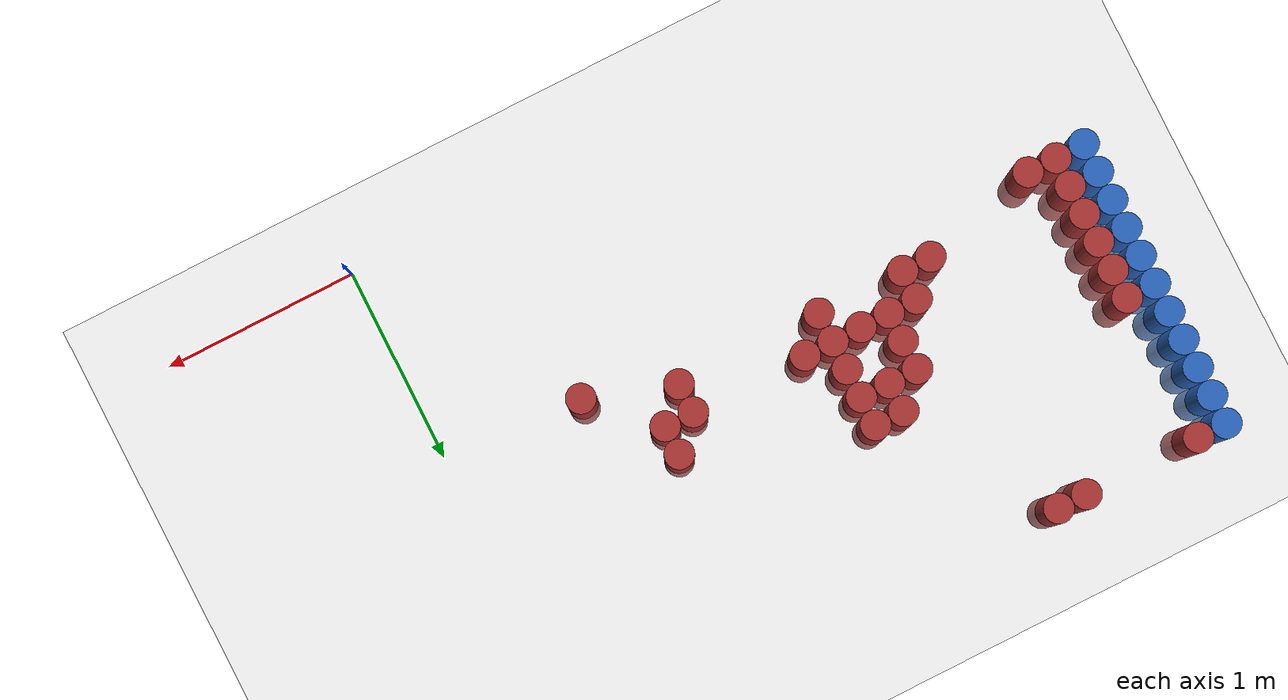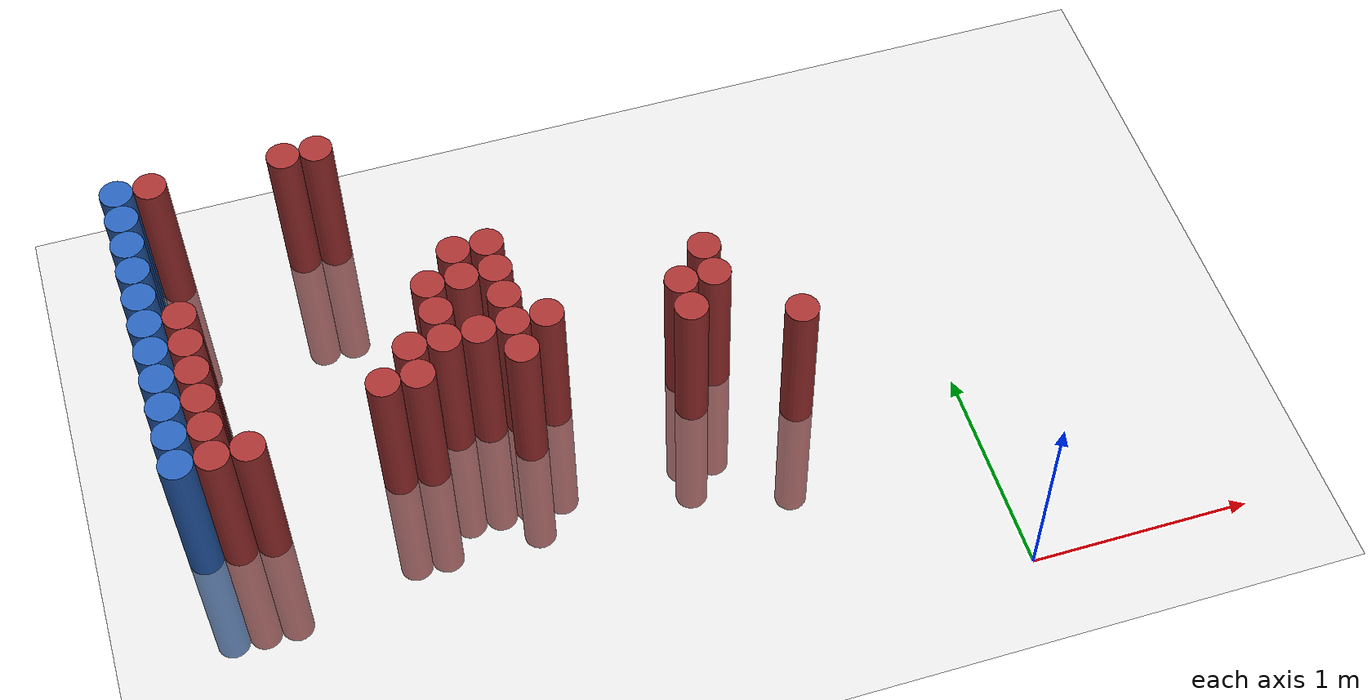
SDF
<sdf version="1.6">
 <world name="default">
  <model name="ground_plane">
   <static>1</static>
   <link name="link">
    <collision name="collision">
     <geometry><plane><normal>0 0 1</normal><size>100 100</size></plane></geometry>
     <surface><friction><ode><mu>100</mu><mu2>50</mu2></ode></friction></surface>
    </collision>
    <visual name="visual">
     <cast_shadows>0</cast_shadows>
     <geometry><plane><normal>0 0 1</normal><size>100 100</size></plane></geometry>
     <material>
      <script><uri>file://media/materials/scripts/gazebo.material</uri><name>Gazebo/Grey</name></script>
     </material>
    </visual>
   </link>
  </model>
  <model name="unit_cylinder_129">
   <static>1</static>
   <pose>-3.425000 1.075000 0.000000 0.000000 0.000000 0.000000</pose>
   <link name="link">
    <inertial>
     <mass>1</mass>
     <inertia><ixx>0.145833</ixx><ixy>0</ixy><ixz>0</ixz><iyy>0.145833</iyy><iyz>0</iyz><izz>0.125</izz></inertia>
    </inertial>
    <collision name="collision">
     <geometry><cylinder><radius>0.075000</radius><length>1.5</length></cylinder></geometry>
    </collision>
    <visual name="visual">
     <geometry><cylinder><radius>0.075000</radius><length>1.5</length></cylinder></geometry>
     <material>
      <ambient>0.152000 0.379000 0.720000 1</ambient>
      <diffuse>0.152000 0.379000 0.720000 1</diffuse>
     </material>
     <material>
      <script><name>Gazebo/Grey</name><uri>file://media/materials/scripts/gazebo.material</uri></script>
     </material>
    </visual>
   </link>
  </model>
  <model name="unit_cylinder_131">
   <static>1</static>
   <pose>-3.425000 1.225000 0.000000 0.000000 0.000000 0.000000</pose>
   <link name="link">
    <inertial>
     <mass>1</mass>
     <inertia><ixx>0.145833</ixx><ixy>0</ixy><ixz>0</ixz><iyy>0.145833</iyy><iyz>0</iyz><izz>0.125</izz></inertia>
    </inertial>
    <collision name="collision">
     <geometry><cylinder><radius>0.075000</radius><length>1.5</length></cylinder></geometry>
    </collision>
    <visual name="visual">
     <geometry><cylinder><radius>0.075000</radius><length>1.5</length></cylinder></geometry>
     <material>
      <ambient>0.152000 0.379000 0.720000 1</ambient>
      <diffuse>0.152000 0.379000 0.720000 1</diffuse>
     </material>
     <material>
      <script><name>Gazebo/Grey</name><uri>file://media/materials/scripts/gazebo.material</uri></script>
     </material>
    </visual>
   </link>
  </model>
  <model name="unit_cylinder_133">
   <static>1</static>
   <pose>-3.425000 1.375000 0.000000 0.000000 0.000000 0.000000</pose>
   <link name="link">
    <inertial>
     <mass>1</mass>
     <inertia><ixx>0.145833</ixx><ixy>0</ixy><ixz>0</ixz><iyy>0.145833</iyy><iyz>0</iyz><izz>0.125</izz></inertia>
    </inertial>
    <collision name="collision">
     <geometry><cylinder><radius>0.075000</radius><length>1.5</length></cylinder></geometry>
    </collision>
    <visual name="visual">
     <geometry><cylinder><radius>0.075000</radius><length>1.5</length></cylinder></geometry>
     <material>
      <ambient>0.152000 0.379000 0.720000 1</ambient>
      <diffuse>0.152000 0.379000 0.720000 1</diffuse>
     </material>
     <material>
      <script><name>Gazebo/Grey</name><uri>file://media/materials/scripts/gazebo.material</uri></script>
     </material>
    </visual>
   </link>
  </model>
  <model name="unit_cylinder_135">
   <static>1</static>
   <pose>-3.425000 1.525000 0.000000 0.000000 0.000000 0.000000</pose>
   <link name="link">
    <inertial>
     <mass>1</mass>
     <inertia><ixx>0.145833</ixx><ixy>0</ixy><ixz>0</ixz><iyy>0.145833</iyy><iyz>0</iyz><izz>0.125</izz></inertia>
    </inertial>
    <collision name="collision">
     <geometry><cylinder><radius>0.075000</radius><length>1.5</length></cylinder></geometry>
    </collision>
    <visual name="visual">
     <geometry><cylinder><radius>0.075000</radius><length>1.5</length></cylinder></geometry>
     <material>
      <ambient>0.152000 0.379000 0.720000 1</ambient>
      <diffuse>0.152000 0.379000 0.720000 1</diffuse>
     </material>
     <material>
      <script><name>Gazebo/Grey</name><uri>file://media/materials/scripts/gazebo.material</uri></script>
     </material>
    </visual>
   </link>
  </model>
  <model name="unit_cylinder_137">
   <static>1</static>
   <pose>-3.425000 1.675000 0.000000 0.000000 0.000000 0.000000</pose>
   <link name="link">
    <inertial>
     <mass>1</mass>
     <inertia><ixx>0.145833</ixx><ixy>0</ixy><ixz>0</ixz><iyy>0.145833</iyy><iyz>0</iyz><izz>0.125</izz></inertia>
    </inertial>
    <collision name="collision">
     <geometry><cylinder><radius>0.075000</radius><length>1.5</length></cylinder></geometry>
    </collision>
    <visual name="visual">
     <geometry><cylinder><radius>0.075000</radius><length>1.5</length></cylinder></geometry>
     <material>
      <ambient>0.152000 0.379000 0.720000 1</ambient>
      <diffuse>0.152000 0.379000 0.720000 1</diffuse>
     </material>
     <material>
      <script><name>Gazebo/Grey</name><uri>file://media/materials/scripts/gazebo.material</uri></script>
     </material>
    </visual>
   </link>
  </model>
  <model name="unit_cylinder_139">
   <static>1</static>
   <pose>-3.425000 1.825000 0.000000 0.000000 0.000000 0.000000</pose>
   <link name="link">
    <inertial>
     <mass>1</mass>
     <inertia><ixx>0.145833</ixx><ixy>0</ixy><ixz>0</ixz><iyy>0.145833</iyy><iyz>0</iyz><izz>0.125</izz></inertia>
    </inertial>
    <collision name="collision">
     <geometry><cylinder><radius>0.075000</radius><length>1.5</length></cylinder></geometry>
    </collision>
    <visual name="visual">
     <geometry><cylinder><radius>0.075000</radius><length>1.5</length></cylinder></geometry>
     <material>
      <ambient>0.152000 0.379000 0.720000 1</ambient>
      <diffuse>0.152000 0.379000 0.720000 1</diffuse>
     </material>
     <material>
      <script><name>Gazebo/Grey</name><uri>file://media/materials/scripts/gazebo.material</uri></script>
     </material>
    </visual>
   </link>
  </model>
  <model name="unit_cylinder_141">
   <static>1</static>
   <pose>-3.425000 1.975000 0.000000 0.000000 0.000000 0.000000</pose>
   <link name="link">
    <inertial>
     <mass>1</mass>
     <inertia><ixx>0.145833</ixx><ixy>0</ixy><ixz>0</ixz><iyy>0.145833</iyy><iyz>0</iyz><izz>0.125</izz></inertia>
    </inertial>
    <collision name="collision">
     <geometry><cylinder><radius>0.075000</radius><length>1.5</length></cylinder></geometry>
    </collision>
    <visual name="visual">
     <geometry><cylinder><radius>0.075000</radius><length>1.5</length></cylinder></geometry>
     <material>
      <ambient>0.152000 0.379000 0.720000 1</ambient>
      <diffuse>0.152000 0.379000 0.720000 1</diffuse>
     </material>
     <material>
      <script><name>Gazebo/Grey</name><uri>file://media/materials/scripts/gazebo.material</uri></script>
     </material>
    </visual>
   </link>
  </model>
  <model name="unit_cylinder_143">
   <static>1</static>
   <pose>-3.425000 2.125000 0.000000 0.000000 0.000000 0.000000</pose>
   <link name="link">
    <inertial>
     <mass>1</mass>
     <inertia><ixx>0.145833</ixx><ixy>0</ixy><ixz>0</ixz><iyy>0.145833</iyy><iyz>0</iyz><izz>0.125</izz></inertia>
    </inertial>
    <collision name="collision">
     <geometry><cylinder><radius>0.075000</radius><length>1.5</length></cylinder></geometry>
    </collision>
    <visual name="visual">
     <geometry><cylinder><radius>0.075000</radius><length>1.5</length></cylinder></geometry>
     <material>
      <ambient>0.152000 0.379000 0.720000 1</ambient>
      <diffuse>0.152000 0.379000 0.720000 1</diffuse>
     </material>
     <material>
      <script><name>Gazebo/Grey</name><uri>file://media/materials/scripts/gazebo.material</uri></script>
     </material>
    </visual>
   </link>
  </model>
  <model name="unit_cylinder_145">
   <static>1</static>
   <pose>-3.425000 2.275000 0.000000 0.000000 0.000000 0.000000</pose>
   <link name="link">
    <inertial>
     <mass>1</mass>
     <inertia><ixx>0.145833</ixx><ixy>0</ixy><ixz>0</ixz><iyy>0.145833</iyy><iyz>0</iyz><izz>0.125</izz></inertia>
    </inertial>
    <collision name="collision">
     <geometry><cylinder><radius>0.075000</radius><length>1.5</length></cylinder></geometry>
    </collision>
    <visual name="visual">
     <geometry><cylinder><radius>0.075000</radius><length>1.5</length></cylinder></geometry>
     <material>
      <ambient>0.152000 0.379000 0.720000 1</ambient>
      <diffuse>0.152000 0.379000 0.720000 1</diffuse>
     </material>
     <material>
      <script><name>Gazebo/Grey</name><uri>file://media/materials/scripts/gazebo.material</uri></script>
     </material>
    </visual>
   </link>
  </model>
  <model name="unit_cylinder_147">
   <static>1</static>
   <pose>-3.425000 2.425000 0.000000 0.000000 0.000000 0.000000</pose>
   <link name="link">
    <inertial>
     <mass>1</mass>
     <inertia><ixx>0.145833</ixx><ixy>0</ixy><ixz>0</ixz><iyy>0.145833</iyy><iyz>0</iyz><izz>0.125</izz></inertia>
    </inertial>
    <collision name="collision">
     <geometry><cylinder><radius>0.075000</radius><length>1.5</length></cylinder></geometry>
    </collision>
    <visual name="visual">
     <geometry><cylinder><radius>0.075000</radius><length>1.5</length></cylinder></geometry>
     <material>
      <ambient>0.152000 0.379000 0.720000 1</ambient>
      <diffuse>0.152000 0.379000 0.720000 1</diffuse>
     </material>
     <material>
      <script><name>Gazebo/Grey</name><uri>file://media/materials/scripts/gazebo.material</uri></script>
     </material>
    </visual>
   </link>
  </model>
  <model name="unit_cylinder_149">
   <static>1</static>
   <pose>-3.425000 2.575000 0.000000 0.000000 0.000000 0.000000</pose>
   <link name="link">
    <inertial>
     <mass>1</mass>
     <inertia><ixx>0.145833</ixx><ixy>0</ixy><ixz>0</ixz><iyy>0.145833</iyy><iyz>0</iyz><izz>0.125</izz></inertia>
    </inertial>
    <collision name="collision">
     <geometry><cylinder><radius>0.075000</radius><length>1.5</length></cylinder></geometry>
    </collision>
    <visual name="visual">
     <geometry><cylinder><radius>0.075000</radius><length>1.5</length></cylinder></geometry>
     <material>
      <ambient>0.152000 0.379000 0.720000 1</ambient>
      <diffuse>0.152000 0.379000 0.720000 1</diffuse>
     </material>
     <material>
      <script><name>Gazebo/Grey</name><uri>file://media/materials/scripts/gazebo.material</uri></script>
     </material>
    </visual>
   </link>
  </model>
  <model name="unit_cylinder_228">
   <static>1</static>
   <pose>-3.425000 1.075000 0.000000 0.000000 0.000000 0.000000</pose>
   <link name="link">
    <inertial>
     <mass>1</mass>
     <inertia><ixx>0.145833</ixx><ixy>0</ixy><ixz>0</ixz><iyy>0.145833</iyy><iyz>0</iyz><izz>0.125</izz></inertia>
    </inertial>
    <collision name="collision">
     <geometry><cylinder><radius>0.075000</radius><length>1.5</length></cylinder></geometry>
    </collision>
    <visual name="visual">
     <geometry><cylinder><radius>0.075000</radius><length>1.5</length></cylinder></geometry>
     <material>
      <ambient>0.152000 0.379000 0.720000 1</ambient>
      <diffuse>0.152000 0.379000 0.720000 1</diffuse>
     </material>
     <material>
      <script><name>Gazebo/Grey</name><uri>file://media/materials/scripts/gazebo.material</uri></script>
     </material>
    </visual>
   </link>
  </model>
  <model name="unit_cylinder_229">
   <static>1</static>
   <pose>-3.425000 1.225000 0.000000 0.000000 0.000000 0.000000</pose>
   <link name="link">
    <inertial>
     <mass>1</mass>
     <inertia><ixx>0.145833</ixx><ixy>0</ixy><ixz>0</ixz><iyy>0.145833</iyy><iyz>0</iyz><izz>0.125</izz></inertia>
    </inertial>
    <collision name="collision">
     <geometry><cylinder><radius>0.075000</radius><length>1.5</length></cylinder></geometry>
    </collision>
    <visual name="visual">
     <geometry><cylinder><radius>0.075000</radius><length>1.5</length></cylinder></geometry>
     <material>
      <ambient>0.152000 0.379000 0.720000 1</ambient>
      <diffuse>0.152000 0.379000 0.720000 1</diffuse>
     </material>
     <material>
      <script><name>Gazebo/Grey</name><uri>file://media/materials/scripts/gazebo.material</uri></script>
     </material>
    </visual>
   </link>
  </model>
  <model name="unit_cylinder_230">
   <static>1</static>
   <pose>-3.425000 1.375000 0.000000 0.000000 0.000000 0.000000</pose>
   <link name="link">
    <inertial>
     <mass>1</mass>
     <inertia><ixx>0.145833</ixx><ixy>0</ixy><ixz>0</ixz><iyy>0.145833</iyy><iyz>0</iyz><izz>0.125</izz></inertia>
    </inertial>
    <collision name="collision">
     <geometry><cylinder><radius>0.075000</radius><length>1.5</length></cylinder></geometry>
    </collision>
    <visual name="visual">
     <geometry><cylinder><radius>0.075000</radius><length>1.5</length></cylinder></geometry>
     <material>
      <ambient>0.152000 0.379000 0.720000 1</ambient>
      <diffuse>0.152000 0.379000 0.720000 1</diffuse>
     </material>
     <material>
      <script><name>Gazebo/Grey</name><uri>file://media/materials/scripts/gazebo.material</uri></script>
     </material>
    </visual>
   </link>
  </model>
  <model name="unit_cylinder_231">
   <static>1</static>
   <pose>-3.425000 1.525000 0.000000 0.000000 0.000000 0.000000</pose>
   <link name="link">
    <inertial>
     <mass>1</mass>
     <inertia><ixx>0.145833</ixx><ixy>0</ixy><ixz>0</ixz><iyy>0.145833</iyy><iyz>0</iyz><izz>0.125</izz></inertia>
    </inertial>
    <collision name="collision">
     <geometry><cylinder><radius>0.075000</radius><length>1.5</length></cylinder></geometry>
    </collision>
    <visual name="visual">
     <geometry><cylinder><radius>0.075000</radius><length>1.5</length></cylinder></geometry>
     <material>
      <ambient>0.152000 0.379000 0.720000 1</ambient>
      <diffuse>0.152000 0.379000 0.720000 1</diffuse>
     </material>
     <material>
      <script><name>Gazebo/Grey</name><uri>file://media/materials/scripts/gazebo.material</uri></script>
     </material>
    </visual>
   </link>
  </model>
  <model name="unit_cylinder_232">
   <static>1</static>
   <pose>-3.425000 1.675000 0.000000 0.000000 0.000000 0.000000</pose>
   <link name="link">
    <inertial>
     <mass>1</mass>
     <inertia><ixx>0.145833</ixx><ixy>0</ixy><ixz>0</ixz><iyy>0.145833</iyy><iyz>0</iyz><izz>0.125</izz></inertia>
    </inertial>
    <collision name="collision">
     <geometry><cylinder><radius>0.075000</radius><length>1.5</length></cylinder></geometry>
    </collision>
    <visual name="visual">
     <geometry><cylinder><radius>0.075000</radius><length>1.5</length></cylinder></geometry>
     <material>
      <ambient>0.152000 0.379000 0.720000 1</ambient>
      <diffuse>0.152000 0.379000 0.720000 1</diffuse>
     </material>
     <material>
      <script><name>Gazebo/Grey</name><uri>file://media/materials/scripts/gazebo.material</uri></script>
     </material>
    </visual>
   </link>
  </model>
  <model name="unit_cylinder_233">
   <static>1</static>
   <pose>-3.425000 1.825000 0.000000 0.000000 0.000000 0.000000</pose>
   <link name="link">
    <inertial>
     <mass>1</mass>
     <inertia><ixx>0.145833</ixx><ixy>0</ixy><ixz>0</ixz><iyy>0.145833</iyy><iyz>0</iyz><izz>0.125</izz></inertia>
    </inertial>
    <collision name="collision">
     <geometry><cylinder><radius>0.075000</radius><length>1.5</length></cylinder></geometry>
    </collision>
    <visual name="visual">
     <geometry><cylinder><radius>0.075000</radius><length>1.5</length></cylinder></geometry>
     <material>
      <ambient>0.152000 0.379000 0.720000 1</ambient>
      <diffuse>0.152000 0.379000 0.720000 1</diffuse>
     </material>
     <material>
      <script><name>Gazebo/Grey</name><uri>file://media/materials/scripts/gazebo.material</uri></script>
     </material>
    </visual>
   </link>
  </model>
  <model name="unit_cylinder_234">
   <static>1</static>
   <pose>-3.425000 1.975000 0.000000 0.000000 0.000000 0.000000</pose>
   <link name="link">
    <inertial>
     <mass>1</mass>
     <inertia><ixx>0.145833</ixx><ixy>0</ixy><ixz>0</ixz><iyy>0.145833</iyy><iyz>0</iyz><izz>0.125</izz></inertia>
    </inertial>
    <collision name="collision">
     <geometry><cylinder><radius>0.075000</radius><length>1.5</length></cylinder></geometry>
    </collision>
    <visual name="visual">
     <geometry><cylinder><radius>0.075000</radius><length>1.5</length></cylinder></geometry>
     <material>
      <ambient>0.152000 0.379000 0.720000 1</ambient>
      <diffuse>0.152000 0.379000 0.720000 1</diffuse>
     </material>
     <material>
      <script><name>Gazebo/Grey</name><uri>file://media/materials/scripts/gazebo.material</uri></script>
     </material>
    </visual>
   </link>
  </model>
  <model name="unit_cylinder_235">
   <static>1</static>
   <pose>-3.425000 2.125000 0.000000 0.000000 0.000000 0.000000</pose>
   <link name="link">
    <inertial>
     <mass>1</mass>
     <inertia><ixx>0.145833</ixx><ixy>0</ixy><ixz>0</ixz><iyy>0.145833</iyy><iyz>0</iyz><izz>0.125</izz></inertia>
    </inertial>
    <collision name="collision">
     <geometry><cylinder><radius>0.075000</radius><length>1.5</length></cylinder></geometry>
    </collision>
    <visual name="visual">
     <geometry><cylinder><radius>0.075000</radius><length>1.5</length></cylinder></geometry>
     <material>
      <ambient>0.152000 0.379000 0.720000 1</ambient>
      <diffuse>0.152000 0.379000 0.720000 1</diffuse>
     </material>
     <material>
      <script><name>Gazebo/Grey</name><uri>file://media/materials/scripts/gazebo.material</uri></script>
     </material>
    </visual>
   </link>
  </model>
  <model name="unit_cylinder_236">
   <static>1</static>
   <pose>-3.425000 2.275000 0.000000 0.000000 0.000000 0.000000</pose>
   <link name="link">
    <inertial>
     <mass>1</mass>
     <inertia><ixx>0.145833</ixx><ixy>0</ixy><ixz>0</ixz><iyy>0.145833</iyy><iyz>0</iyz><izz>0.125</izz></inertia>
    </inertial>
    <collision name="collision">
     <geometry><cylinder><radius>0.075000</radius><length>1.5</length></cylinder></geometry>
    </collision>
    <visual name="visual">
     <geometry><cylinder><radius>0.075000</radius><length>1.5</length></cylinder></geometry>
     <material>
      <ambient>0.152000 0.379000 0.720000 1</ambient>
      <diffuse>0.152000 0.379000 0.720000 1</diffuse>
     </material>
     <material>
      <script><name>Gazebo/Grey</name><uri>file://media/materials/scripts/gazebo.material</uri></script>
     </material>
    </visual>
   </link>
  </model>
  <model name="unit_cylinder_237">
   <static>1</static>
   <pose>-3.425000 2.425000 0.000000 0.000000 0.000000 0.000000</pose>
   <link name="link">
    <inertial>
     <mass>1</mass>
     <inertia><ixx>0.145833</ixx><ixy>0</ixy><ixz>0</ixz><iyy>0.145833</iyy><iyz>0</iyz><izz>0.125</izz></inertia>
    </inertial>
    <collision name="collision">
     <geometry><cylinder><radius>0.075000</radius><length>1.5</length></cylinder></geometry>
    </collision>
    <visual name="visual">
     <geometry><cylinder><radius>0.075000</radius><length>1.5</length></cylinder></geometry>
     <material>
      <ambient>0.152000 0.379000 0.720000 1</ambient>
      <diffuse>0.152000 0.379000 0.720000 1</diffuse>
     </material>
     <material>
      <script><name>Gazebo/Grey</name><uri>file://media/materials/scripts/gazebo.material</uri></script>
     </material>
    </visual>
   </link>
  </model>
  <model name="unit_cylinder_238">
   <static>1</static>
   <pose>-3.425000 2.575000 0.000000 0.000000 0.000000 0.000000</pose>
   <link name="link">
    <inertial>
     <mass>1</mass>
     <inertia><ixx>0.145833</ixx><ixy>0</ixy><ixz>0</ixz><iyy>0.145833</iyy><iyz>0</iyz><izz>0.125</izz></inertia>
    </inertial>
    <collision name="collision">
     <geometry><cylinder><radius>0.075000</radius><length>1.5</length></cylinder></geometry>
    </collision>
    <visual name="visual">
     <geometry><cylinder><radius>0.075000</radius><length>1.5</length></cylinder></geometry>
     <material>
      <ambient>0.152000 0.379000 0.720000 1</ambient>
      <diffuse>0.152000 0.379000 0.720000 1</diffuse>
     </material>
     <material>
      <script><name>Gazebo/Grey</name><uri>file://media/materials/scripts/gazebo.material</uri></script>
     </material>
    </visual>
   </link>
  </model>
  <model name="unit_cylinder_267">
   <static>1</static>
   <pose>-3.275000 1.075000 0.000000 0.000000 0.000000 0.000000</pose>
   <link name="link">
    <inertial>
     <mass>1</mass>
     <inertia><ixx>0.145833</ixx><ixy>0</ixy><ixz>0</ixz><iyy>0.145833</iyy><iyz>0</iyz><izz>0.125</izz></inertia>
    </inertial>
    <collision name="collision">
     <geometry><cylinder><radius>0.075000</radius><length>1.5</length></cylinder></geometry>
    </collision>
    <visual name="visual">
     <geometry><cylinder><radius>0.075000</radius><length>1.5</length></cylinder></geometry>
     <material>
      <ambient>0.648000 0.192000 0.192000 1</ambient>
      <diffuse>0.648000 0.192000 0.192000 1</diffuse>
     </material>
     <material>
      <script><name>Gazebo/Grey</name><uri>file://media/materials/scripts/gazebo.material</uri></script>
     </material>
    </visual>
   </link>
  </model>
  <model name="unit_cylinder_268">
   <static>1</static>
   <pose>-3.275000 1.225000 0.000000 0.000000 0.000000 0.000000</pose>
   <link name="link">
    <inertial>
     <mass>1</mass>
     <inertia><ixx>0.145833</ixx><ixy>0</ixy><ixz>0</ixz><iyy>0.145833</iyy><iyz>0</iyz><izz>0.125</izz></inertia>
    </inertial>
    <collision name="collision">
     <geometry><cylinder><radius>0.075000</radius><length>1.5</length></cylinder></geometry>
    </collision>
    <visual name="visual">
     <geometry><cylinder><radius>0.075000</radius><length>1.5</length></cylinder></geometry>
     <material>
      <ambient>0.648000 0.192000 0.192000 1</ambient>
      <diffuse>0.648000 0.192000 0.192000 1</diffuse>
     </material>
     <material>
      <script><name>Gazebo/Grey</name><uri>file://media/materials/scripts/gazebo.material</uri></script>
     </material>
    </visual>
   </link>
  </model>
  <model name="unit_cylinder_269">
   <static>1</static>
   <pose>-3.275000 1.375000 0.000000 0.000000 0.000000 0.000000</pose>
   <link name="link">
    <inertial>
     <mass>1</mass>
     <inertia><ixx>0.145833</ixx><ixy>0</ixy><ixz>0</ixz><iyy>0.145833</iyy><iyz>0</iyz><izz>0.125</izz></inertia>
    </inertial>
    <collision name="collision">
     <geometry><cylinder><radius>0.075000</radius><length>1.5</length></cylinder></geometry>
    </collision>
    <visual name="visual">
     <geometry><cylinder><radius>0.075000</radius><length>1.5</length></cylinder></geometry>
     <material>
      <ambient>0.648000 0.192000 0.192000 1</ambient>
      <diffuse>0.648000 0.192000 0.192000 1</diffuse>
     </material>
     <material>
      <script><name>Gazebo/Grey</name><uri>file://media/materials/scripts/gazebo.material</uri></script>
     </material>
    </visual>
   </link>
  </model>
  <model name="unit_cylinder_270">
   <static>1</static>
   <pose>-3.275000 1.525000 0.000000 0.000000 0.000000 0.000000</pose>
   <link name="link">
    <inertial>
     <mass>1</mass>
     <inertia><ixx>0.145833</ixx><ixy>0</ixy><ixz>0</ixz><iyy>0.145833</iyy><iyz>0</iyz><izz>0.125</izz></inertia>
    </inertial>
    <collision name="collision">
     <geometry><cylinder><radius>0.075000</radius><length>1.5</length></cylinder></geometry>
    </collision>
    <visual name="visual">
     <geometry><cylinder><radius>0.075000</radius><length>1.5</length></cylinder></geometry>
     <material>
      <ambient>0.648000 0.192000 0.192000 1</ambient>
      <diffuse>0.648000 0.192000 0.192000 1</diffuse>
     </material>
     <material>
      <script><name>Gazebo/Grey</name><uri>file://media/materials/scripts/gazebo.material</uri></script>
     </material>
    </visual>
   </link>
  </model>
  <model name="unit_cylinder_271">
   <static>1</static>
   <pose>-3.275000 1.675000 0.000000 0.000000 0.000000 0.000000</pose>
   <link name="link">
    <inertial>
     <mass>1</mass>
     <inertia><ixx>0.145833</ixx><ixy>0</ixy><ixz>0</ixz><iyy>0.145833</iyy><iyz>0</iyz><izz>0.125</izz></inertia>
    </inertial>
    <collision name="collision">
     <geometry><cylinder><radius>0.075000</radius><length>1.5</length></cylinder></geometry>
    </collision>
    <visual name="visual">
     <geometry><cylinder><radius>0.075000</radius><length>1.5</length></cylinder></geometry>
     <material>
      <ambient>0.648000 0.192000 0.192000 1</ambient>
      <diffuse>0.648000 0.192000 0.192000 1</diffuse>
     </material>
     <material>
      <script><name>Gazebo/Grey</name><uri>file://media/materials/scripts/gazebo.material</uri></script>
     </material>
    </visual>
   </link>
  </model>
  <model name="unit_cylinder_272">
   <static>1</static>
   <pose>-3.275000 1.825000 0.000000 0.000000 0.000000 0.000000</pose>
   <link name="link">
    <inertial>
     <mass>1</mass>
     <inertia><ixx>0.145833</ixx><ixy>0</ixy><ixz>0</ixz><iyy>0.145833</iyy><iyz>0</iyz><izz>0.125</izz></inertia>
    </inertial>
    <collision name="collision">
     <geometry><cylinder><radius>0.075000</radius><length>1.5</length></cylinder></geometry>
    </collision>
    <visual name="visual">
     <geometry><cylinder><radius>0.075000</radius><length>1.5</length></cylinder></geometry>
     <material>
      <ambient>0.648000 0.192000 0.192000 1</ambient>
      <diffuse>0.648000 0.192000 0.192000 1</diffuse>
     </material>
     <material>
      <script><name>Gazebo/Grey</name><uri>file://media/materials/scripts/gazebo.material</uri></script>
     </material>
    </visual>
   </link>
  </model>
  <model name="unit_cylinder_273">
   <static>1</static>
   <pose>-3.275000 2.575000 0.000000 0.000000 0.000000 0.000000</pose>
   <link name="link">
    <inertial>
     <mass>1</mass>
     <inertia><ixx>0.145833</ixx><ixy>0</ixy><ixz>0</ixz><iyy>0.145833</iyy><iyz>0</iyz><izz>0.125</izz></inertia>
    </inertial>
    <collision name="collision">
     <geometry><cylinder><radius>0.075000</radius><length>1.5</length></cylinder></geometry>
    </collision>
    <visual name="visual">
     <geometry><cylinder><radius>0.075000</radius><length>1.5</length></cylinder></geometry>
     <material>
      <ambient>0.648000 0.192000 0.192000 1</ambient>
      <diffuse>0.648000 0.192000 0.192000 1</diffuse>
     </material>
     <material>
      <script><name>Gazebo/Grey</name><uri>file://media/materials/scripts/gazebo.material</uri></script>
     </material>
    </visual>
   </link>
  </model>
  <model name="unit_cylinder_291">
   <static>1</static>
   <pose>-3.125000 1.075000 0.000000 0.000000 0.000000 0.000000</pose>
   <link name="link">
    <inertial>
     <mass>1</mass>
     <inertia><ixx>0.145833</ixx><ixy>0</ixy><ixz>0</ixz><iyy>0.145833</iyy><iyz>0</iyz><izz>0.125</izz></inertia>
    </inertial>
    <collision name="collision">
     <geometry><cylinder><radius>0.075000</radius><length>1.5</length></cylinder></geometry>
    </collision>
    <visual name="visual">
     <geometry><cylinder><radius>0.075000</radius><length>1.5</length></cylinder></geometry>
     <material>
      <ambient>0.648000 0.192000 0.192000 1</ambient>
      <diffuse>0.648000 0.192000 0.192000 1</diffuse>
     </material>
     <material>
      <script><name>Gazebo/Grey</name><uri>file://media/materials/scripts/gazebo.material</uri></script>
     </material>
    </visual>
   </link>
  </model>
  <model name="unit_cylinder_320">
   <static>1</static>
   <pose>-2.675000 2.575000 0.000000 0.000000 0.000000 0.000000</pose>
   <link name="link">
    <inertial>
     <mass>1</mass>
     <inertia><ixx>0.145833</ixx><ixy>0</ixy><ixz>0</ixz><iyy>0.145833</iyy><iyz>0</iyz><izz>0.125</izz></inertia>
    </inertial>
    <collision name="collision">
     <geometry><cylinder><radius>0.075000</radius><length>1.5</length></cylinder></geometry>
    </collision>
    <visual name="visual">
     <geometry><cylinder><radius>0.075000</radius><length>1.5</length></cylinder></geometry>
     <material>
      <ambient>0.648000 0.192000 0.192000 1</ambient>
      <diffuse>0.648000 0.192000 0.192000 1</diffuse>
     </material>
     <material>
      <script><name>Gazebo/Grey</name><uri>file://media/materials/scripts/gazebo.material</uri></script>
     </material>
    </visual>
   </link>
  </model>
  <model name="unit_cylinder_326">
   <static>1</static>
   <pose>-2.525000 1.225000 0.000000 0.000000 0.000000 0.000000</pose>
   <link name="link">
    <inertial>
     <mass>1</mass>
     <inertia><ixx>0.145833</ixx><ixy>0</ixy><ixz>0</ixz><iyy>0.145833</iyy><iyz>0</iyz><izz>0.125</izz></inertia>
    </inertial>
    <collision name="collision">
     <geometry><cylinder><radius>0.075000</radius><length>1.5</length></cylinder></geometry>
    </collision>
    <visual name="visual">
     <geometry><cylinder><radius>0.075000</radius><length>1.5</length></cylinder></geometry>
     <material>
      <ambient>0.648000 0.192000 0.192000 1</ambient>
      <diffuse>0.648000 0.192000 0.192000 1</diffuse>
     </material>
     <material>
      <script><name>Gazebo/Grey</name><uri>file://media/materials/scripts/gazebo.material</uri></script>
     </material>
    </visual>
   </link>
  </model>
  <model name="unit_cylinder_327">
   <static>1</static>
   <pose>-2.525000 2.575000 0.000000 0.000000 0.000000 0.000000</pose>
   <link name="link">
    <inertial>
     <mass>1</mass>
     <inertia><ixx>0.145833</ixx><ixy>0</ixy><ixz>0</ixz><iyy>0.145833</iyy><iyz>0</iyz><izz>0.125</izz></inertia>
    </inertial>
    <collision name="collision">
     <geometry><cylinder><radius>0.075000</radius><length>1.5</length></cylinder></geometry>
    </collision>
    <visual name="visual">
     <geometry><cylinder><radius>0.075000</radius><length>1.5</length></cylinder></geometry>
     <material>
      <ambient>0.648000 0.192000 0.192000 1</ambient>
      <diffuse>0.648000 0.192000 0.192000 1</diffuse>
     </material>
     <material>
      <script><name>Gazebo/Grey</name><uri>file://media/materials/scripts/gazebo.material</uri></script>
     </material>
    </visual>
   </link>
  </model>
  <model name="unit_cylinder_334">
   <static>1</static>
   <pose>-2.375000 1.225000 0.000000 0.000000 0.000000 0.000000</pose>
   <link name="link">
    <inertial>
     <mass>1</mass>
     <inertia><ixx>0.145833</ixx><ixy>0</ixy><ixz>0</ixz><iyy>0.145833</iyy><iyz>0</iyz><izz>0.125</izz></inertia>
    </inertial>
    <collision name="collision">
     <geometry><cylinder><radius>0.075000</radius><length>1.5</length></cylinder></geometry>
    </collision>
    <visual name="visual">
     <geometry><cylinder><radius>0.075000</radius><length>1.5</length></cylinder></geometry>
     <material>
      <ambient>0.648000 0.192000 0.192000 1</ambient>
      <diffuse>0.648000 0.192000 0.192000 1</diffuse>
     </material>
     <material>
      <script><name>Gazebo/Grey</name><uri>file://media/materials/scripts/gazebo.material</uri></script>
     </material>
    </visual>
   </link>
  </model>
  <model name="unit_cylinder_335">
   <static>1</static>
   <pose>-2.375000 1.375000 0.000000 0.000000 0.000000 0.000000</pose>
   <link name="link">
    <inertial>
     <mass>1</mass>
     <inertia><ixx>0.145833</ixx><ixy>0</ixy><ixz>0</ixz><iyy>0.145833</iyy><iyz>0</iyz><izz>0.125</izz></inertia>
    </inertial>
    <collision name="collision">
     <geometry><cylinder><radius>0.075000</radius><length>1.5</length></cylinder></geometry>
    </collision>
    <visual name="visual">
     <geometry><cylinder><radius>0.075000</radius><length>1.5</length></cylinder></geometry>
     <material>
      <ambient>0.648000 0.192000 0.192000 1</ambient>
      <diffuse>0.648000 0.192000 0.192000 1</diffuse>
     </material>
     <material>
      <script><name>Gazebo/Grey</name><uri>file://media/materials/scripts/gazebo.material</uri></script>
     </material>
    </visual>
   </link>
  </model>
  <model name="unit_cylinder_344">
   <static>1</static>
   <pose>-2.225000 1.375000 0.000000 0.000000 0.000000 0.000000</pose>
   <link name="link">
    <inertial>
     <mass>1</mass>
     <inertia><ixx>0.145833</ixx><ixy>0</ixy><ixz>0</ixz><iyy>0.145833</iyy><iyz>0</iyz><izz>0.125</izz></inertia>
    </inertial>
    <collision name="collision">
     <geometry><cylinder><radius>0.075000</radius><length>1.5</length></cylinder></geometry>
    </collision>
    <visual name="visual">
     <geometry><cylinder><radius>0.075000</radius><length>1.5</length></cylinder></geometry>
     <material>
      <ambient>0.648000 0.192000 0.192000 1</ambient>
      <diffuse>0.648000 0.192000 0.192000 1</diffuse>
     </material>
     <material>
      <script><name>Gazebo/Grey</name><uri>file://media/materials/scripts/gazebo.material</uri></script>
     </material>
    </visual>
   </link>
  </model>
  <model name="unit_cylinder_345">
   <static>1</static>
   <pose>-2.225000 1.525000 0.000000 0.000000 0.000000 0.000000</pose>
   <link name="link">
    <inertial>
     <mass>1</mass>
     <inertia><ixx>0.145833</ixx><ixy>0</ixy><ixz>0</ixz><iyy>0.145833</iyy><iyz>0</iyz><izz>0.125</izz></inertia>
    </inertial>
    <collision name="collision">
     <geometry><cylinder><radius>0.075000</radius><length>1.5</length></cylinder></geometry>
    </collision>
    <visual name="visual">
     <geometry><cylinder><radius>0.075000</radius><length>1.5</length></cylinder></geometry>
     <material>
      <ambient>0.648000 0.192000 0.192000 1</ambient>
      <diffuse>0.648000 0.192000 0.192000 1</diffuse>
     </material>
     <material>
      <script><name>Gazebo/Grey</name><uri>file://media/materials/scripts/gazebo.material</uri></script>
     </material>
    </visual>
   </link>
  </model>
  <model name="unit_cylinder_346">
   <static>1</static>
   <pose>-2.225000 1.675000 0.000000 0.000000 0.000000 0.000000</pose>
   <link name="link">
    <inertial>
     <mass>1</mass>
     <inertia><ixx>0.145833</ixx><ixy>0</ixy><ixz>0</ixz><iyy>0.145833</iyy><iyz>0</iyz><izz>0.125</izz></inertia>
    </inertial>
    <collision name="collision">
     <geometry><cylinder><radius>0.075000</radius><length>1.5</length></cylinder></geometry>
    </collision>
    <visual name="visual">
     <geometry><cylinder><radius>0.075000</radius><length>1.5</length></cylinder></geometry>
     <material>
      <ambient>0.648000 0.192000 0.192000 1</ambient>
      <diffuse>0.648000 0.192000 0.192000 1</diffuse>
     </material>
     <material>
      <script><name>Gazebo/Grey</name><uri>file://media/materials/scripts/gazebo.material</uri></script>
     </material>
    </visual>
   </link>
  </model>
  <model name="unit_cylinder_352">
   <static>1</static>
   <pose>-2.075000 1.375000 0.000000 0.000000 0.000000 0.000000</pose>
   <link name="link">
    <inertial>
     <mass>1</mass>
     <inertia><ixx>0.145833</ixx><ixy>0</ixy><ixz>0</ixz><iyy>0.145833</iyy><iyz>0</iyz><izz>0.125</izz></inertia>
    </inertial>
    <collision name="collision">
     <geometry><cylinder><radius>0.075000</radius><length>1.5</length></cylinder></geometry>
    </collision>
    <visual name="visual">
     <geometry><cylinder><radius>0.075000</radius><length>1.5</length></cylinder></geometry>
     <material>
      <ambient>0.648000 0.192000 0.192000 1</ambient>
      <diffuse>0.648000 0.192000 0.192000 1</diffuse>
     </material>
     <material>
      <script><name>Gazebo/Grey</name><uri>file://media/materials/scripts/gazebo.material</uri></script>
     </material>
    </visual>
   </link>
  </model>
  <model name="unit_cylinder_353">
   <static>1</static>
   <pose>-2.075000 1.675000 0.000000 0.000000 0.000000 0.000000</pose>
   <link name="link">
    <inertial>
     <mass>1</mass>
     <inertia><ixx>0.145833</ixx><ixy>0</ixy><ixz>0</ixz><iyy>0.145833</iyy><iyz>0</iyz><izz>0.125</izz></inertia>
    </inertial>
    <collision name="collision">
     <geometry><cylinder><radius>0.075000</radius><length>1.5</length></cylinder></geometry>
    </collision>
    <visual name="visual">
     <geometry><cylinder><radius>0.075000</radius><length>1.5</length></cylinder></geometry>
     <material>
      <ambient>0.648000 0.192000 0.192000 1</ambient>
      <diffuse>0.648000 0.192000 0.192000 1</diffuse>
     </material>
     <material>
      <script><name>Gazebo/Grey</name><uri>file://media/materials/scripts/gazebo.material</uri></script>
     </material>
    </visual>
   </link>
  </model>
  <model name="unit_cylinder_354">
   <static>1</static>
   <pose>-2.075000 1.825000 0.000000 0.000000 0.000000 0.000000</pose>
   <link name="link">
    <inertial>
     <mass>1</mass>
     <inertia><ixx>0.145833</ixx><ixy>0</ixy><ixz>0</ixz><iyy>0.145833</iyy><iyz>0</iyz><izz>0.125</izz></inertia>
    </inertial>
    <collision name="collision">
     <geometry><cylinder><radius>0.075000</radius><length>1.5</length></cylinder></geometry>
    </collision>
    <visual name="visual">
     <geometry><cylinder><radius>0.075000</radius><length>1.5</length></cylinder></geometry>
     <material>
      <ambient>0.648000 0.192000 0.192000 1</ambient>
      <diffuse>0.648000 0.192000 0.192000 1</diffuse>
     </material>
     <material>
      <script><name>Gazebo/Grey</name><uri>file://media/materials/scripts/gazebo.material</uri></script>
     </material>
    </visual>
   </link>
  </model>
  <model name="unit_cylinder_357">
   <static>1</static>
   <pose>-1.925000 1.225000 0.000000 0.000000 0.000000 0.000000</pose>
   <link name="link">
    <inertial>
     <mass>1</mass>
     <inertia><ixx>0.145833</ixx><ixy>0</ixy><ixz>0</ixz><iyy>0.145833</iyy><iyz>0</iyz><izz>0.125</izz></inertia>
    </inertial>
    <collision name="collision">
     <geometry><cylinder><radius>0.075000</radius><length>1.5</length></cylinder></geometry>
    </collision>
    <visual name="visual">
     <geometry><cylinder><radius>0.075000</radius><length>1.5</length></cylinder></geometry>
     <material>
      <ambient>0.648000 0.192000 0.192000 1</ambient>
      <diffuse>0.648000 0.192000 0.192000 1</diffuse>
     </material>
     <material>
      <script><name>Gazebo/Grey</name><uri>file://media/materials/scripts/gazebo.material</uri></script>
     </material>
    </visual>
   </link>
  </model>
  <model name="unit_cylinder_358">
   <static>1</static>
   <pose>-1.925000 1.375000 0.000000 0.000000 0.000000 0.000000</pose>
   <link name="link">
    <inertial>
     <mass>1</mass>
     <inertia><ixx>0.145833</ixx><ixy>0</ixy><ixz>0</ixz><iyy>0.145833</iyy><iyz>0</iyz><izz>0.125</izz></inertia>
    </inertial>
    <collision name="collision">
     <geometry><cylinder><radius>0.075000</radius><length>1.5</length></cylinder></geometry>
    </collision>
    <visual name="visual">
     <geometry><cylinder><radius>0.075000</radius><length>1.5</length></cylinder></geometry>
     <material>
      <ambient>0.648000 0.192000 0.192000 1</ambient>
      <diffuse>0.648000 0.192000 0.192000 1</diffuse>
     </material>
     <material>
      <script><name>Gazebo/Grey</name><uri>file://media/materials/scripts/gazebo.material</uri></script>
     </material>
    </visual>
   </link>
  </model>
  <model name="unit_cylinder_359">
   <static>1</static>
   <pose>-1.925000 1.525000 0.000000 0.000000 0.000000 0.000000</pose>
   <link name="link">
    <inertial>
     <mass>1</mass>
     <inertia><ixx>0.145833</ixx><ixy>0</ixy><ixz>0</ixz><iyy>0.145833</iyy><iyz>0</iyz><izz>0.125</izz></inertia>
    </inertial>
    <collision name="collision">
     <geometry><cylinder><radius>0.075000</radius><length>1.5</length></cylinder></geometry>
    </collision>
    <visual name="visual">
     <geometry><cylinder><radius>0.075000</radius><length>1.5</length></cylinder></geometry>
     <material>
      <ambient>0.648000 0.192000 0.192000 1</ambient>
      <diffuse>0.648000 0.192000 0.192000 1</diffuse>
     </material>
     <material>
      <script><name>Gazebo/Grey</name><uri>file://media/materials/scripts/gazebo.material</uri></script>
     </material>
    </visual>
   </link>
  </model>
  <model name="unit_cylinder_360">
   <static>1</static>
   <pose>-1.925000 1.675000 0.000000 0.000000 0.000000 0.000000</pose>
   <link name="link">
    <inertial>
     <mass>1</mass>
     <inertia><ixx>0.145833</ixx><ixy>0</ixy><ixz>0</ixz><iyy>0.145833</iyy><iyz>0</iyz><izz>0.125</izz></inertia>
    </inertial>
    <collision name="collision">
     <geometry><cylinder><radius>0.075000</radius><length>1.5</length></cylinder></geometry>
    </collision>
    <visual name="visual">
     <geometry><cylinder><radius>0.075000</radius><length>1.5</length></cylinder></geometry>
     <material>
      <ambient>0.648000 0.192000 0.192000 1</ambient>
      <diffuse>0.648000 0.192000 0.192000 1</diffuse>
     </material>
     <material>
      <script><name>Gazebo/Grey</name><uri>file://media/materials/scripts/gazebo.material</uri></script>
     </material>
    </visual>
   </link>
  </model>
  <model name="unit_cylinder_361">
   <static>1</static>
   <pose>-1.925000 1.825000 0.000000 0.000000 0.000000 0.000000</pose>
   <link name="link">
    <inertial>
     <mass>1</mass>
     <inertia><ixx>0.145833</ixx><ixy>0</ixy><ixz>0</ixz><iyy>0.145833</iyy><iyz>0</iyz><izz>0.125</izz></inertia>
    </inertial>
    <collision name="collision">
     <geometry><cylinder><radius>0.075000</radius><length>1.5</length></cylinder></geometry>
    </collision>
    <visual name="visual">
     <geometry><cylinder><radius>0.075000</radius><length>1.5</length></cylinder></geometry>
     <material>
      <ambient>0.648000 0.192000 0.192000 1</ambient>
      <diffuse>0.648000 0.192000 0.192000 1</diffuse>
     </material>
     <material>
      <script><name>Gazebo/Grey</name><uri>file://media/materials/scripts/gazebo.material</uri></script>
     </material>
    </visual>
   </link>
  </model>
  <model name="unit_cylinder_362">
   <static>1</static>
   <pose>-1.775000 1.375000 0.000000 0.000000 0.000000 0.000000</pose>
   <link name="link">
    <inertial>
     <mass>1</mass>
     <inertia><ixx>0.145833</ixx><ixy>0</ixy><ixz>0</ixz><iyy>0.145833</iyy><iyz>0</iyz><izz>0.125</izz></inertia>
    </inertial>
    <collision name="collision">
     <geometry><cylinder><radius>0.075000</radius><length>1.5</length></cylinder></geometry>
    </collision>
    <visual name="visual">
     <geometry><cylinder><radius>0.075000</radius><length>1.5</length></cylinder></geometry>
     <material>
      <ambient>0.648000 0.192000 0.192000 1</ambient>
      <diffuse>0.648000 0.192000 0.192000 1</diffuse>
     </material>
     <material>
      <script><name>Gazebo/Grey</name><uri>file://media/materials/scripts/gazebo.material</uri></script>
     </material>
    </visual>
   </link>
  </model>
  <model name="unit_cylinder_371">
   <static>1</static>
   <pose>-1.175000 1.225000 0.000000 0.000000 0.000000 0.000000</pose>
   <link name="link">
    <inertial>
     <mass>1</mass>
     <inertia><ixx>0.145833</ixx><ixy>0</ixy><ixz>0</ixz><iyy>0.145833</iyy><iyz>0</iyz><izz>0.125</izz></inertia>
    </inertial>
    <collision name="collision">
     <geometry><cylinder><radius>0.075000</radius><length>1.5</length></cylinder></geometry>
    </collision>
    <visual name="visual">
     <geometry><cylinder><radius>0.075000</radius><length>1.5</length></cylinder></geometry>
     <material>
      <ambient>0.648000 0.192000 0.192000 1</ambient>
      <diffuse>0.648000 0.192000 0.192000 1</diffuse>
     </material>
     <material>
      <script><name>Gazebo/Grey</name><uri>file://media/materials/scripts/gazebo.material</uri></script>
     </material>
    </visual>
   </link>
  </model>
  <model name="unit_cylinder_372">
   <static>1</static>
   <pose>-1.175000 1.375000 0.000000 0.000000 0.000000 0.000000</pose>
   <link name="link">
    <inertial>
     <mass>1</mass>
     <inertia><ixx>0.145833</ixx><ixy>0</ixy><ixz>0</ixz><iyy>0.145833</iyy><iyz>0</iyz><izz>0.125</izz></inertia>
    </inertial>
    <collision name="collision">
     <geometry><cylinder><radius>0.075000</radius><length>1.5</length></cylinder></geometry>
    </collision>
    <visual name="visual">
     <geometry><cylinder><radius>0.075000</radius><length>1.5</length></cylinder></geometry>
     <material>
      <ambient>0.648000 0.192000 0.192000 1</ambient>
      <diffuse>0.648000 0.192000 0.192000 1</diffuse>
     </material>
     <material>
      <script><name>Gazebo/Grey</name><uri>file://media/materials/scripts/gazebo.material</uri></script>
     </material>
    </visual>
   </link>
  </model>
  <model name="unit_cylinder_374">
   <static>1</static>
   <pose>-1.025000 1.375000 0.000000 0.000000 0.000000 0.000000</pose>
   <link name="link">
    <inertial>
     <mass>1</mass>
     <inertia><ixx>0.145833</ixx><ixy>0</ixy><ixz>0</ixz><iyy>0.145833</iyy><iyz>0</iyz><izz>0.125</izz></inertia>
    </inertial>
    <collision name="collision">
     <geometry><cylinder><radius>0.075000</radius><length>1.5</length></cylinder></geometry>
    </collision>
    <visual name="visual">
     <geometry><cylinder><radius>0.075000</radius><length>1.5</length></cylinder></geometry>
     <material>
      <ambient>0.648000 0.192000 0.192000 1</ambient>
      <diffuse>0.648000 0.192000 0.192000 1</diffuse>
     </material>
     <material>
      <script><name>Gazebo/Grey</name><uri>file://media/materials/scripts/gazebo.material</uri></script>
     </material>
    </visual>
   </link>
  </model>
  <model name="unit_cylinder_375">
   <static>1</static>
   <pose>-1.025000 1.525000 0.000000 0.000000 0.000000 0.000000</pose>
   <link name="link">
    <inertial>
     <mass>1</mass>
     <inertia><ixx>0.145833</ixx><ixy>0</ixy><ixz>0</ixz><iyy>0.145833</iyy><iyz>0</iyz><izz>0.125</izz></inertia>
    </inertial>
    <collision name="collision">
     <geometry><cylinder><radius>0.075000</radius><length>1.5</length></cylinder></geometry>
    </collision>
    <visual name="visual">
     <geometry><cylinder><radius>0.075000</radius><length>1.5</length></cylinder></geometry>
     <material>
      <ambient>0.648000 0.192000 0.192000 1</ambient>
      <diffuse>0.648000 0.192000 0.192000 1</diffuse>
     </material>
     <material>
      <script><name>Gazebo/Grey</name><uri>file://media/materials/scripts/gazebo.material</uri></script>
     </material>
    </visual>
   </link>
  </model>
  <model name="unit_cylinder_381">
   <static>1</static>
   <pose>-0.725000 1.075000 0.000000 0.000000 0.000000 0.000000</pose>
   <link name="link">
    <inertial>
     <mass>1</mass>
     <inertia><ixx>0.145833</ixx><ixy>0</ixy><ixz>0</ixz><iyy>0.145833</iyy><iyz>0</iyz><izz>0.125</izz></inertia>
    </inertial>
    <collision name="collision">
     <geometry><cylinder><radius>0.075000</radius><length>1.5</length></cylinder></geometry>
    </collision>
    <visual name="visual">
     <geometry><cylinder><radius>0.075000</radius><length>1.5</length></cylinder></geometry>
     <material>
      <ambient>0.648000 0.192000 0.192000 1</ambient>
      <diffuse>0.648000 0.192000 0.192000 1</diffuse>
     </material>
     <material>
      <script><name>Gazebo/Grey</name><uri>file://media/materials/scripts/gazebo.material</uri></script>
     </material>
    </visual>
   </link>
  </model>
 </world>
</sdf>
